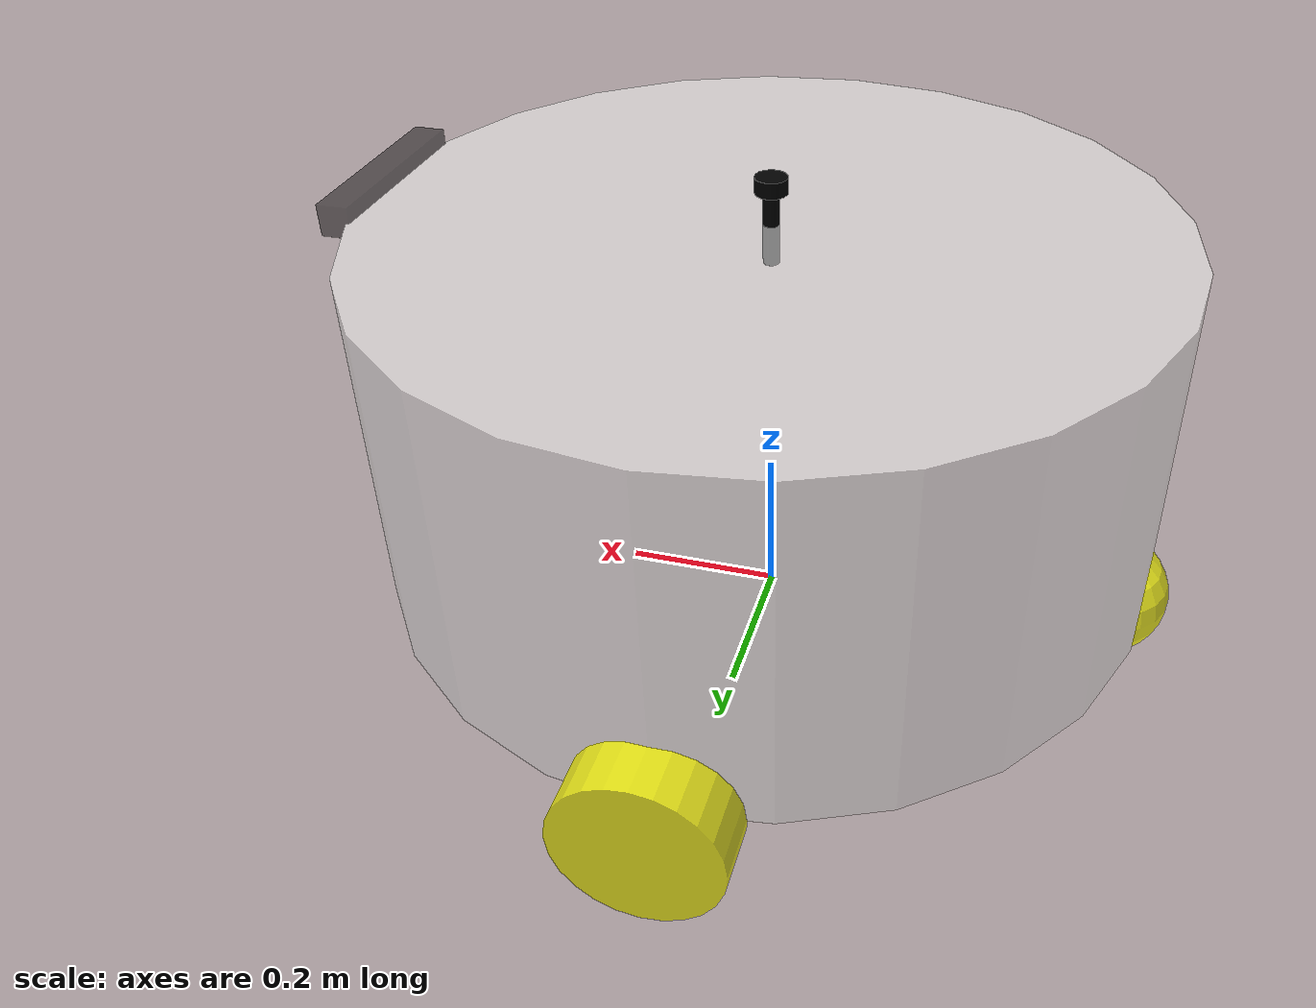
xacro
<?xml version="1.0"?>
<robot xmlns:xacro="http://www.ros.org/wiki/xacro" name="fishbot">
<!-- 导入外部文件所创建的xacro部件 -->
<!-- 机器人本体部分 -->
<xacro:include filename="$(find robot_description)/urdf/robot/base.urdf.xacro"/>
<!-- 传感器部分 -->
<xacro:include filename="$(find robot_description)/urdf/robot/sensor/camera.urdf.xacro"/>
<xacro:include filename="$(find robot_description)/urdf/robot/sensor/imu.urdf.xacro"/>
<xacro:include filename="$(find robot_description)/urdf/robot/sensor/laser.urdf.xacro"/>
<!-- 执行器部分 -->
<xacro:include filename="$(find robot_description)/urdf/robot/actuator/wheel.urdf.xacro"/>
<xacro:include filename="$(find robot_description)/urdf/robot/actuator/caster.urdf.xacro"/>

<!-- 差速控制插件 -->
<!-- ros2_control的控制 -->
<xacro:include filename="$(find robot_description)/urdf/robot/fishbot.ros2_control.xacro"/>
<!-- 传感器插件 -->
<xacro:include filename="$(find robot_description)/urdf/robot/plugins/gazebo_sensor_plugin.xacro"/>

<!-- 宏调用生成机器人 -->
<xacro:base_xacro length="0.45" radius="0.5"/>
<xacro:imu_xacro xyz="0.0 0.0 0.02"/>
<!-- 将深度相机固定到机器人的额头顶部 (0.45/2 = 0.225m) -->
<xacro:camera_xacro xyz="0.50 0.0 0.225"/>
<!-- 雷达支撑杆的底部位于机器人顶部 (0.45/2 = 0.225m) -->
<xacro:laser_xacro xyz="0.0 0.0 0.225"/>
<!-- 轮子的中心位于机器人侧面底部 (Z = -0.45/2 = -0.225m) -->
<xacro:wheel_xacro wheel_name="left_wheel" xyz="0 0.52 -0.225"/>
<xacro:wheel_xacro wheel_name="right_wheel" xyz="0 -0.52 -0.225"/>
<xacro:caster_xacro caster_name="front_caster" xyz="0.45 0 -0.245"/>
<xacro:caster_xacro caster_name="back_caster" xyz="-0.45 0 -0.245"/>
<!-- 调用差速控制插件 -->
<!-- 调用ros2_control的控制 -->
<xacro:fishbot_ros2_control/>
<!-- 调用传感器插件 -->
<xacro:gazebo_sensor_plugin/>

  <!-- P3D 插件已启用，完美替代 AMCL 提供物理绝对真值定位 -->
  <gazebo>
    <plugin name="ground_truth_p3d" filename="libgazebo_ros_p3d.so">
      <ros>
        <namespace>/</namespace>
        <remapping>odom:=ground_truth_odom</remapping>
      </ros>
      <body_name>base_footprint</body_name>
      <frame_name>world</frame_name>
      <update_rate>100.0</update_rate>
      <xyz_offset>0 0 0</xyz_offset>
      <rpy_offset>0 0 0</rpy_offset>
      <gaussian_noise>0</gaussian_noise>
    </plugin>
  </gazebo>

</robot>

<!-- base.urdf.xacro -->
<!-- 输入robot可以快速生成robot编写样本 -->
<robot xmlns:xacro="http://www.ros.org/wiki/xacro">
	<xacro:include filename="$(find robot_description)/urdf/robot/common_inertia.xacro"/>
	<xacro:macro name="base_xacro" params="length radius">
		<!-- 虚拟部件 用于调整机器人的整体离地高度 因为没有实体组件 所以没有额外参数 -->
		<link name="base_footprint"/>
		<!-- ctrl+/可以快速生成urdf注释 -->
		<!-- 机器人的身体部分 -->
		<!-- 输入link可以快速生成机器人部件1link坐标系 -->
		<link name="base_link">
			<!-- 部件的外观描述 -->
			<!-- visual可视化部件 -->
			<visual>
				<!-- 1.沿着自己的几何中心的偏移量和旋转量 载体坐标系的相对量 默认单位米-->
				<origin xyz="0.0 0.0 0.0" rpy="0.0 0.0 0.0"/>
				<!-- 2.几何形状 -->
				<geometry>
					<!-- 机器人的几何形状我们设置成半径0.1 高度0.12的圆柱体 -->
					<cylinder radius="${radius}" length="${length}"/>
				</geometry>
				<!-- 3.材质颜色 -->
				<material name="white">
					<!-- 四个值分别表示红绿蓝和透明度 -->
					<color rgba="1.0 1.0 1.0 0.5"/>
				</material>
			</visual>

			<collision>
				<!-- 1.沿着自己的几何中心的偏移量和旋转量 载体坐标系的相对量 默认单位米-->
				<origin xyz="0.0 0.0 0.0" rpy="0.0 0.0 0.0"/>
				<!-- 2.几何形状 -->
				<geometry>
					<!-- 机器人的几何形状我们设置成半径0.1 高度0.12的圆柱体 -->
					<cylinder radius="${radius}" length="${length}"/>
				</geometry>
				<!-- 3.材质颜色 -->
				<material name="white">
					<!-- 四个值分别表示红绿蓝和透明度 -->
					<color rgba="1.0 1.0 1.0 0.5"/>
				</material>
			</collision>

			<xacro:cylinder_inertia m="20.0" r="${radius}" h="${length}"/>
		</link>

		<joint name="joint_name" type="fixed">
			<!-- 调整该虚拟组件距离机器人中心的高度为机器人高度的一半+轮子半径-0.001m -->
			<origin xyz="0.0 0.0 ${length/2.0+0.1-0.001}" rpy="0.0 0.0 0.0"/>
			<parent link="base_footprint"/>
			<child link="base_link"/>
		</joint>
	</xacro:macro>
</robot>

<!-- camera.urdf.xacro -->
<!-- 输入robot可以快速生成robot编写样本 -->
<robot xmlns:xacro="http://www.ros.org/wiki/xacro">
	<xacro:include filename="$(find robot_description)/urdf/robot/common_inertia.xacro"/>
	<xacro:macro name="camera_xacro" params="xyz">
		<!-- 机器人的IMU组件，惯性测量单元传感器 -->
		<!-- ctrl+/可以快速生成urdf注释 -->
		<!-- 机器人的身体部分 -->
		<!-- 输入link可以快速生成机器人部件link -->
		<link name="camera_link">
			<!-- 部件的外观描述 -->
			<!-- visual可视化部件 -->
			<visual>
				<!-- 1.沿着自己的几何中心的偏移量和旋转量 载体坐标系的相对量-->
				<origin xyz="0.0 0.0 0.0" rpy="0.0 0.0 0.0"/>
				<!-- 2.几何形状 -->
				<geometry>
					<!-- 摄像头模块 (适配大型车体) -->
					<box size="0.04 0.25 0.04"/>
				</geometry>
				<!-- 3.材质颜色 -->
				<material name="black">
					<!-- 四个值分别表示红绿蓝和透明度 -->
					<color rgba="0.0 0.0 0.0 0.5"/>
				</material>
			</visual>

			<collision>
				<!-- 1.沿着自己的几何中心的偏移量和旋转量 载体坐标系的相对量-->
				<origin xyz="0.0 0.0 0.0" rpy="0.0 0.0 0.0"/>
				<!-- 2.几何形状 -->
				<geometry>
					<!-- IMU的几何形状我们设置成棱为0.02的立方体 -->
					<box size="0.04 0.25 0.04"/>
				</geometry>
				<!-- 3.材质颜色 -->
				<material name="black">
					<!-- 四个值分别表示红绿蓝和透明度 -->
					<color rgba="0.0 0.0 0.0 0.5"/>
				</material>
			</collision>

			<xacro:box_inertia m="0.2" w="0.04" h="0.25" d="0.04"/>
		</link>
		<!-- 虚拟部件 用于实现深度相机的朝向调整 -->
		<link name="camera_optical_link"></link>

		<!-- 机器人的关节，用于组合机器人的部件 -->
		<joint name="camera_joint" type="fixed">
			<!-- 表示固定的位置 固定在几何中心向上3厘米的位置-->
			<origin xyz="${xyz}" rpy="0.0 0.0 0.0"/>
			<!-- 表示该关节固定机器人本体base_link和惯性测量单元IMU_link -->
			<parent link="base_link"/>
			<child link="camera_link"/>
		</joint>

		<joint name="camera_optical_joint" type="fixed">
			<!-- 表示固定的位置 固定在几何中心向上3厘米的位置-->
			<origin xyz="0 0 0" rpy="${-pi/2} 0.0 ${-pi/2}"/>
			<!-- 表示该关节固定机器人本体base_link和惯性测量单元IMU_link -->
			<parent link="camera_link"/>
			<child link="camera_optical_link"/>
		</joint>
	</xacro:macro>
</robot>

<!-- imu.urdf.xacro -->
<!-- 输入robot可以快速生成robot编写样本 -->
<robot xmlns:xacro="http://www.ros.org/wiki/xacro">
	<xacro:include filename="$(find robot_description)/urdf/robot/common_inertia.xacro"/>
	<xacro:macro name="imu_xacro" params="xyz">
		<!-- 机器人的IMU组件，惯性测量单元传感器 -->
		<!-- ctrl+/可以快速生成urdf注释 -->
		<!-- 机器人的身体部分 -->
		<!-- 输入link可以快速生成机器人部件link -->
		<link name="imu_link">
			<!-- 部件的外观描述 -->
			<!-- visual可视化部件 -->
			<visual>
				<!-- 1.沿着自己的几何中心的偏移量和旋转量 载体坐标系的相对量-->
				<origin xyz="0.0 0.0 0.0" rpy="0.0 0.0 0.0"/>
				<!-- 2.几何形状 -->
				<geometry>
					<!-- IMU的几何形状我们设置成棱为0.02的立方体 -->
					<box size="0.02 0.02 0.02"/>
				</geometry>
				<!-- 3.材质颜色 -->
				<material name="black">
					<!-- 四个值分别表示红绿蓝和透明度 -->
					<color rgba="0.0 0.0 0.0 0.5"/>
				</material>
			</visual>

			<collision>
				<!-- 1.沿着自己的几何中心的偏移量和旋转量 载体坐标系的相对量-->
				<origin xyz="0.0 0.0 0.0" rpy="0.0 0.0 0.0"/>
				<!-- 2.几何形状 -->
				<geometry>
					<!-- IMU的几何形状我们设置成棱为0.02的立方体 -->
					<box size="0.02 0.02 0.02"/>
				</geometry>
				<!-- 3.材质颜色 -->
				<material name="black">
					<!-- 四个值分别表示红绿蓝和透明度 -->
					<color rgba="0.0 0.0 0.0 0.5"/>
				</material>
			</collision>

			<xacro:box_inertia m="0.05" w="0.02" h="0.02" d="0.02"/>
		</link>

		<!-- 机器人的关节，用于组合机器人的部件 -->
		<joint name="imu_joint" type="fixed">
			<!-- 表示固定的位置 固定在几何中心向上3厘米的位置-->
			<origin xyz="${xyz}" rpy="0.0 0.0 0.0"/>
			<!-- 表示该关节固定机器人本体base_link和惯性测量单元IMU_link -->
			<parent link="base_link"/>
			<child link="imu_link"/>
		</joint>
	</xacro:macro>
</robot>

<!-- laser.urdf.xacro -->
<!-- 输入robot可以快速生成robot编写样本 -->
<robot xmlns:xacro="http://www.ros.org/wiki/xacro">
	<xacro:include filename="$(find robot_description)/urdf/robot/common_inertia.xacro"/>
	<xacro:macro name="laser_xacro" params="xyz">
		<!-- 机器人的IMU组件，惯性测量单元传感器 -->
		<!-- ctrl+/可以快速生成urdf注释 -->
		<!-- 机器人的身体部分 -->
		<!-- 输入link可以快速生成机器人部件link -->
		<!-- 雷达支撑杆 -->
		<link name="laser_cylinder_link">
			<!-- 部件的外观描述 -->
			<!-- visual可视化部件 -->
			<visual>
				<!-- 1.沿着自己的几何中心的偏移量和旋转量 载体坐标系的相对量-->
				<origin xyz="0.0 0.0 0.0" rpy="0.0 0.0 0.0"/>
				<!-- 2.几何形状 -->
				<geometry>
					<!-- 雷达支撑杆的几何形状我们设置成半径为0.01 高为0.1的圆柱体 -->
					<cylinder radius="0.01" length="0.1"/>
				</geometry>
				<!-- 3.材质颜色 -->
				<material name="black">
					<!-- 四个值分别表示红绿蓝和透明度 -->
					<color rgba="0.0 0.0 0.0 1.0"/>
				</material>
			</visual>

			<xacro:cylinder_inertia m="0.05" r="0.01" h="0.1"/>
		</link>

		<!-- 雷达 -->
		<link name="laser_link">
			<!-- 部件的外观描述 -->
			<!-- visual可视化部件 -->
			<visual>
				<!-- 1.沿着自己的几何中心的偏移量和旋转量 载体坐标系的相对量-->
				<origin xyz="0.0 0.0 0.0" rpy="0.0 0.0 0.0"/>
				<!-- 2.几何形状 -->
				<geometry>
					<!-- IMU的几何形状我们设置成棱为0.02的立方体 -->
					<cylinder radius="0.02" length="0.02"/>
				</geometry>
				<!-- 3.材质颜色 -->
				<material name="black">
					<!-- 四个值分别表示红绿蓝和透明度 -->
					<color rgba="0.0 0.0 0.0 1.0"/>
				</material>
			</visual>

			<collision>
				<!-- 1.沿着自己的几何中心的偏移量和旋转量 载体坐标系的相对量-->
				<origin xyz="0.0 0.0 0.0" rpy="0.0 0.0 0.0"/>
				<!-- 2.几何形状 -->
				<geometry>
					<!-- IMU的几何形状我们设置成棱为0.02的立方体 -->
					<cylinder radius="0.02" length="0.02"/>
				</geometry>
				<!-- 3.材质颜色 -->
				<material name="black">
					<!-- 四个值分别表示红绿蓝和透明度 -->
					<color rgba="0.0 0.0 0.0 1.0"/>
				</material>
			</collision>

			<xacro:cylinder_inertia m="0.1" r="0.02" h="0.02"/>
		</link>

		<!-- 机器人的关节，用于组合机器人的部件 -->
		<joint name="laser_joint" type="fixed">
			<!-- 表示固定的位置 固定在几何中心向上5厘米的位置 因为雷达支撑杆的高度是10cm -->
			<origin xyz="0.0 0.0 0.05" rpy="0.0 0.0 0.0"/>
			<!-- 表示该关节固定雷达支撑杆laser_cylinder_link和雷达laser_link -->
			<parent link="laser_cylinder_link"/>
			<child link="laser_link"/>
		</joint>

		<joint name="laser_cylinder_joint" type="fixed">
			<!-- 表示固定的位置 固定在几何中心向上5厘米的位置 因为雷达支撑杆的高度是10cm -->
			<!-- 让用户能通过参数去改变雷达支撑杆的位置 -->
			<origin xyz="${xyz}" rpy="0.0 0.0 0.0"/>
			<!-- 表示该关节固定机器人本体base_link和惯性测量单元IMU_link -->
			<parent link="base_link"/>
			<child link="laser_cylinder_link"/>
		</joint>

		<!-- gazebo需要的材质颜色 -->
		<gazebo reference="laser_cylinder_link">
			<material>Gazebo/Black</material>
		</gazebo>

		<gazebo reference="laser_link">
			<material>Gazebo/Black</material>
		</gazebo>
	</xacro:macro>
</robot>

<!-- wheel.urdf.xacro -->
<!-- 输入robot可以快速生成robot编写样本 -->
<robot xmlns:xacro="http://www.ros.org/wiki/xacro">
	<xacro:include filename="$(find robot_description)/urdf/robot/common_inertia.xacro"/>
	<xacro:macro name="wheel_xacro" params="wheel_name xyz">
		<!-- 机器人的IMU组件，惯性测量单元传感器 -->
		<!-- ctrl+/可以快速生成urdf注释 -->
		<!-- 机器人的身体部分 -->
		<!-- 输入link可以快速生成机器人部件link -->
		<link name="${wheel_name}_link">
			<!-- 部件的外观描述 -->
			<!-- visual可视化部件 -->
			<visual>
				<!-- 1.沿着自己的几何中心(即轮子的joint中心)的偏移量和旋转量 载体坐标系的相对量-->
				<origin xyz="0.0 0.0 0.0" rpy="1.57079 0.0 0.0"/>
				<!-- 2.几何形状 -->
				<geometry>
					<!-- 车轮的几何形状我们设置成半径为 0.1 的圆柱体 -->
					<cylinder radius="0.1" length="0.08"/>
				</geometry>
				<!-- 3.材质颜色 -->
				<material name="yellow">
					<!-- 四个值分别表示红绿蓝和透明度 -->
					<color rgba="1.0 1.0 0.0 0.8"/>
				</material>
			</visual>

			<collision>
				<!-- 1.沿着自己的几何中心(即轮子的joint中心)的偏移量和旋转量 载体坐标系的相对量-->
				<origin xyz="0.0 0.0 0.0" rpy="1.57079 0.0 0.0"/>
				<!-- 2.几何形状 -->
				<geometry>
					<!-- 车轮的几何形状我们设置成半径为 0.1 的圆柱体 -->
					<cylinder radius="0.1" length="0.08"/>
				</geometry>
				<!-- 3.材质颜色 -->
				<material name="yellow">
					<!-- 四个值分别表示红绿蓝和透明度 -->
					<color rgba="1.0 1.0 0.0 0.8"/>
				</material>
			</collision>

			<xacro:cylinder_inertia m="0.5" r="0.1" h="0.08"/>
		</link>

		<!-- 机器人的关节，用于组合机器人的部件 -->
		<joint name="${wheel_name}_joint" type="continuous">
			<!-- 表示固定的位置 通过参数进行指定-->
			<origin xyz="${xyz}" rpy="0.0 0.0 0.0"/>
			<!-- 表示该关节固定机器人本体base_link和惯性测量单元IMU_link -->
			<parent link="base_link"/>
			<child link="${wheel_name}_link"/>
			<axis xyz="0.0 1.0 0.0"/>
		</joint>

		<!-- gazebo需要的物理参数 -->
		<gazebo reference="${wheel_name}_link">
			<!-- mu1切向摩擦 mu2径向摩擦 kp刚度系数 kd阻尼系数-->
			<mu1 value="20.0"/>
			<mu2 value="20.0"/>
			<kp value="1000000000.0"/>
			<kd value="1.0"/>
		</gazebo>
	</xacro:macro>
</robot>

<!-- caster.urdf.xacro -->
<!-- 输入robot可以快速生成robot编写样本 -->
<robot xmlns:xacro="http://www.ros.org/wiki/xacro">
	<xacro:include filename="$(find robot_description)/urdf/robot/common_inertia.xacro"/>
	<xacro:macro name="caster_xacro" params="caster_name xyz">
		<!-- 机器人的IMU组件，惯性测量单元传感器 -->
		<!-- ctrl+/可以快速生成urdf注释 -->
		<!-- 机器人的身体部分 -->
		<!-- 输入link可以快速生成机器人部件link -->
		<link name="${caster_name}_link">
			<!-- 部件的外观描述 -->
			<!-- visual可视化部件 -->
			<visual>
				<!-- 1.沿着自己的几何中心(即轮子的joint中心)的偏移量和旋转量 载体坐标系的相对量-->
				<origin xyz="0.0 0.0 0.0" rpy="0 0.0 0.0"/>
				<!-- 2.几何形状 -->
				<geometry>
					<!-- 万向轮的几何形状我们设置成半径为 0.08 的球体 (适配 0.1m 主轮) -->
					<sphere radius="0.08"/>
				</geometry>
				<!-- 3.材质颜色 -->
				<material name="yellow">
					<!-- 四个值分别表示红绿蓝和透明度 -->
					<color rgba="1.0 1.0 0.0 0.8"/>
				</material>
			</visual>

			<collision>
				<!-- 1.沿着自己的几何中心(即轮子的joint中心)的偏移量和旋转量 载体坐标系的相对量-->
				<origin xyz="0.0 0.0 0.0" rpy="0 0.0 0.0"/>
				<!-- 2.几何形状 -->
				<geometry>
					<!-- 万向轮的几何形状我们设置成半径为 0.08 的球体 -->
					<sphere radius="0.08"/>
				</geometry>
				<!-- 3.材质颜色 -->
				<material name="yellow">
					<!-- 四个值分别表示红绿蓝和透明度 -->
					<color rgba="1.0 1.0 0.0 0.8"/>
				</material>
			</collision>

			<xacro:sphere_inertia m="0.2" r="0.08"/>
		</link>

		<!-- 机器人的关节，用于组合机器人的部件 -->
		<joint name="${caster_name}_joint" type="fixed">
			<!-- 表示固定的位置 固定在几何中心向上3厘米的位置-->
			<origin xyz="${xyz}" rpy="0.0 0.0 0.0"/>
			<!-- 表示该关节固定机器人本体base_link -->
			<parent link="base_link"/>
			<child link="${caster_name}_link"/>
		</joint>

		<gazebo reference="${caster_name}_link">
			<!-- mu1切向摩擦 mu2径向摩擦 kp刚度系数 kd阻尼系数-->
			<mu1 value="0.0"/>
			<mu2 value="0.0"/>
			<kp value="1000000000.0"/>
			<kd value="1.0"/>
		</gazebo>
	</xacro:macro>
</robot>
